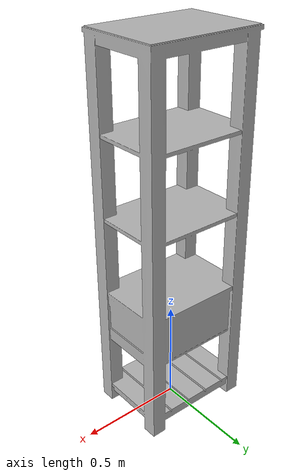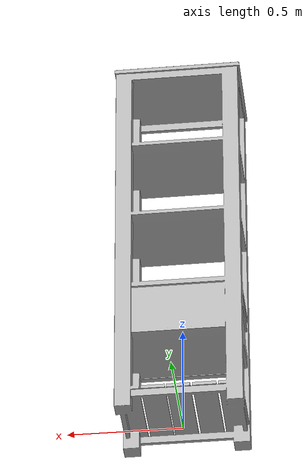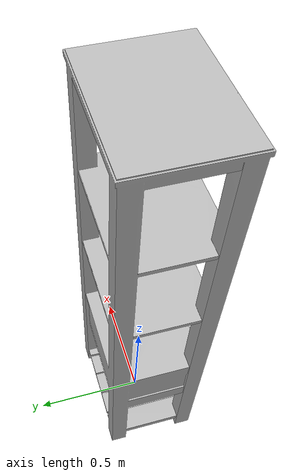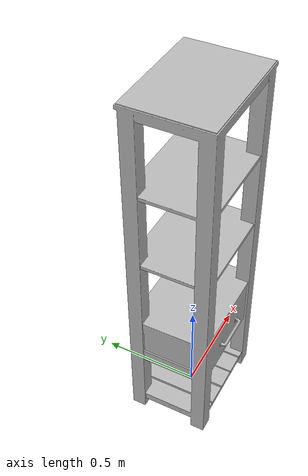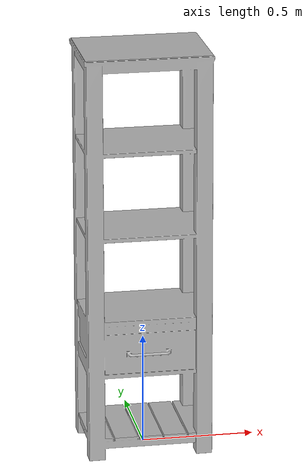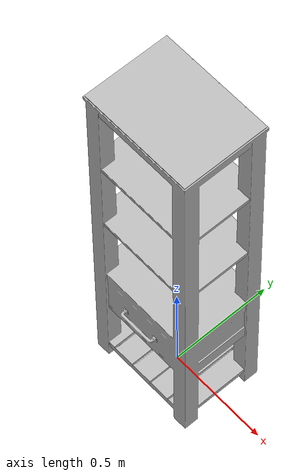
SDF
<sdf version="1.6">
	<model name="Bookcases_Oea630f7d6252_lod0">
		<link name="main_link">
			<visual name="visual_RootNode">
				<geometry>
					<mesh>
						<uri>model://Bookcases_Oea630f7d6252_lod0/meshes/visual_RootNode.dae</uri>
					</mesh>
				</geometry>
			</visual>
			<collision name="collision_RootNode_lod0_0">
				<geometry>
					<mesh>
						<uri>model://Bookcases_Oea630f7d6252_lod0/meshes/collision_RootNode_lod0_0.dae</uri>
					</mesh>
				</geometry>
			</collision>
		</link>
	</model>
</sdf>
